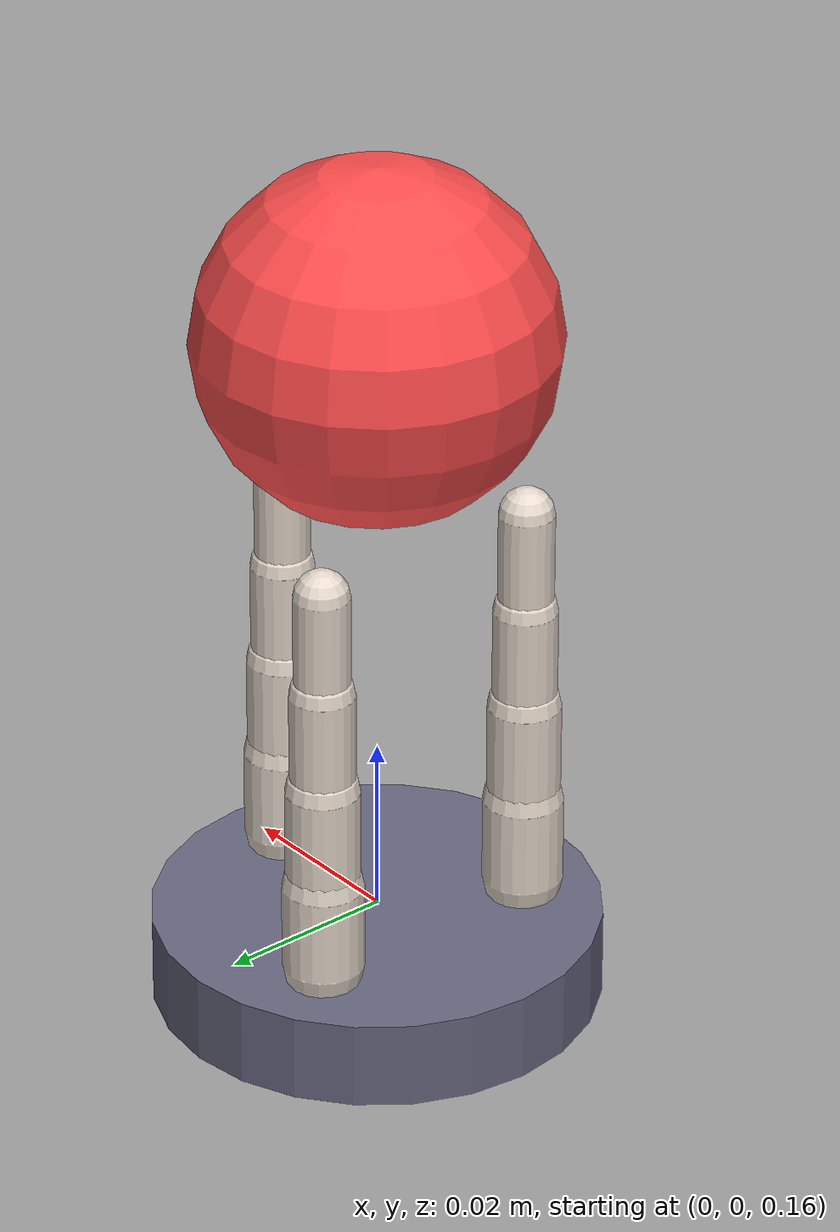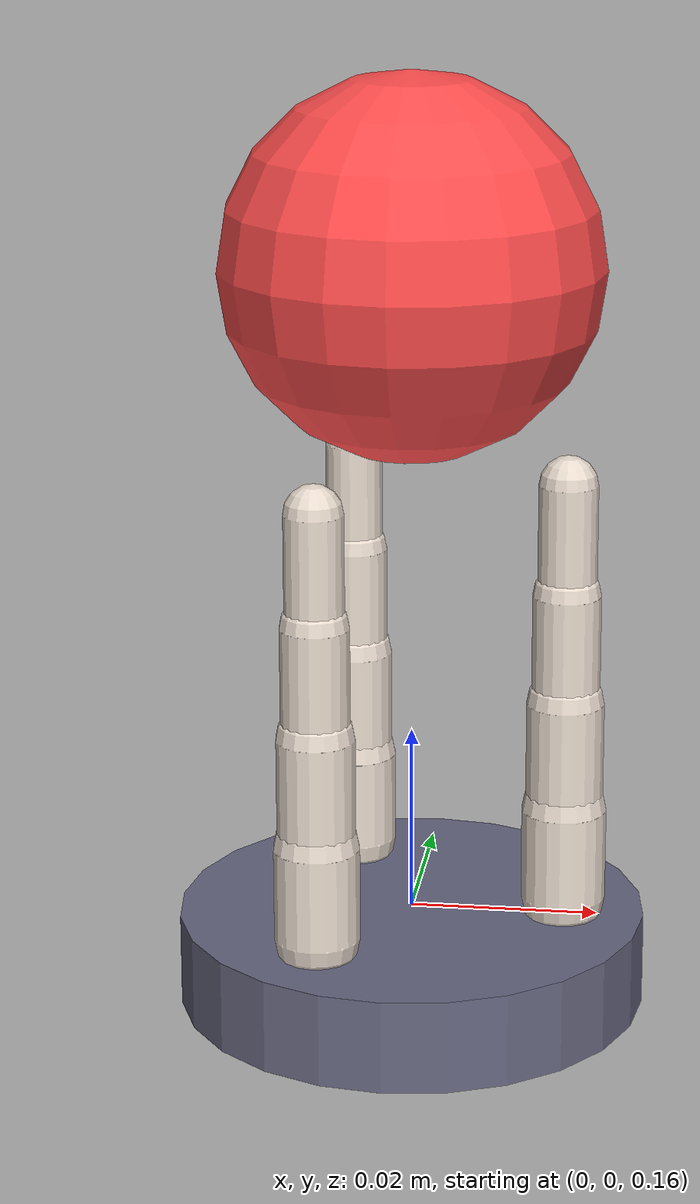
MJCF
<?xml version="1.0" encoding="utf-8"?>
<mujoco model="test_gripper">

    <!-- Physics-correct soft gripper: tendon routing, stiffness gradient, no segment overlap.
         Flex/soft hints: small timestep, Newton solver, joint stiffness/damping for compliance. -->
    <compiler angle="radian" autolimits="true" meshdir="meshes"/>

    <option timestep="0.002" iterations="50" solver="Newton" tolerance="1e-10">
        <flag warmstart="enable"/>
    </option>

    <size nconmax="500" njmax="500" nstack="5000000"/>

    <visual>
        <headlight diffuse="0.6 0.6 0.6" ambient="0.3 0.3 0.3" specular="0.1 0.1 0.1"/>
        <rgba haze="0.15 0.25 0.35 1"/>
        <global azimuth="120" elevation="-20"/>
    </visual>

    <default>
        <default class="gripper">
            <geom type="capsule" condim="4" friction="0.8 0.005 0.0001"
                  rgba="0.9 0.85 0.8 1" margin="0.001"/>
            <joint type="hinge" limited="true" range="-1.57 1.57"
                   stiffness="0.02" damping="0.5"
                   armature="0.001"/>
        </default>
        <default class="palm">
            <geom type="cylinder" rgba="0.4 0.4 0.5 1" friction="0.8 0.005 0.0001"/>
        </default>
        <default class="visual">
            <geom contype="0" conaffinity="0" group="1"/>
        </default>
    </default>

    <asset>
        <texture type="skybox" builtin="gradient" rgb1="0.3 0.5 0.7" rgb2="0 0 0" width="512" height="3072"/>
        <texture type="2d" name="groundplane" builtin="checker" mark="edge" rgb1="0.2 0.3 0.4" rgb2="0.1 0.2 0.3"
                 markrgb="0.8 0.8 0.8" width="300" height="300"/>
        <material name="groundplane" texture="groundplane" texuniform="true" texrepeat="5 5" reflectance="0.2"/>
        <material name="finger_mat" rgba="0.9 0.85 0.8 1" specular="0.3" shininess="0.5"/>
        <material name="palm_mat" rgba="0.4 0.4 0.5 1" specular="0.5" shininess="0.8"/>
    </asset>

    <worldbody>

        <geom name="ground" type="plane" size="0.5 0.5 0.1" material="groundplane" condim="3"/>
        <light pos="0 0 1.5" dir="0 0 -1" directional="true"/>

        <body name="palm" pos="0 0 0.15">
            <geom class="palm" name="palm_geom" size="0.0250 0.0050"
                  pos="0 0 0.0050" material="palm_mat"/>

            <body name="finger_0_base" pos="0.0163 0.0000 0.0100">
                <joint class="gripper" name="finger_0_base_joint" axis="0 1 0"
                       stiffness="0.0200"/>
                <site name="finger_0_site_base" pos="0 0 0.002" size="0.002"/>
                <geom class="gripper" name="finger_0_seg_0"
                      fromto="0 0 0.0020 0 0 0.0119"
                      size="0.0045" material="finger_mat"/>

                <body name="finger_0_seg_1" pos="0 0 0.0119">
                    <joint class="gripper" name="finger_0_joint_1" axis="0 1 0"
                           stiffness="0.0170"/>
                    <geom class="gripper" name="finger_0_seg_1_geom"
                          fromto="0 0 0.001 0 0 0.0119"
                          size="0.0041" material="finger_mat"/>
                    <site name="finger_0_site_1" pos="0 0 0.0059" size="0.002"/>

                <body name="finger_0_seg_2" pos="0 0 0.0119">
                    <joint class="gripper" name="finger_0_joint_2" axis="0 1 0"
                           stiffness="0.0140"/>
                    <geom class="gripper" name="finger_0_seg_2_geom"
                          fromto="0 0 0.001 0 0 0.0119"
                          size="0.0036" material="finger_mat"/>
                    <site name="finger_0_site_2" pos="0 0 0.0059" size="0.002"/>

                <body name="finger_0_seg_3" pos="0 0 0.0119">
                    <joint class="gripper" name="finger_0_joint_3" axis="0 1 0"
                           stiffness="0.0110"/>
                    <geom class="gripper" name="finger_0_seg_3_geom"
                          fromto="0 0 0.001 0 0 0.0119"
                          size="0.0031" material="finger_mat"/>
                    <site name="finger_0_site_3" pos="0 0 0.0059" size="0.002"/>
                </body>
                </body>
                </body>
            </body>

            <body name="finger_1_base" pos="-0.0081 0.0141 0.0100">
                <joint class="gripper" name="finger_1_base_joint" axis="0 1 0"
                       stiffness="0.0200"/>
                <site name="finger_1_site_base" pos="0 0 0.002" size="0.002"/>
                <geom class="gripper" name="finger_1_seg_0"
                      fromto="0 0 0.0020 0 0 0.0119"
                      size="0.0045" material="finger_mat"/>

                <body name="finger_1_seg_1" pos="0 0 0.0119">
                    <joint class="gripper" name="finger_1_joint_1" axis="0 1 0"
                           stiffness="0.0170"/>
                    <geom class="gripper" name="finger_1_seg_1_geom"
                          fromto="0 0 0.001 0 0 0.0119"
                          size="0.0041" material="finger_mat"/>
                    <site name="finger_1_site_1" pos="0 0 0.0059" size="0.002"/>

                <body name="finger_1_seg_2" pos="0 0 0.0119">
                    <joint class="gripper" name="finger_1_joint_2" axis="0 1 0"
                           stiffness="0.0140"/>
                    <geom class="gripper" name="finger_1_seg_2_geom"
                          fromto="0 0 0.001 0 0 0.0119"
                          size="0.0036" material="finger_mat"/>
                    <site name="finger_1_site_2" pos="0 0 0.0059" size="0.002"/>

                <body name="finger_1_seg_3" pos="0 0 0.0119">
                    <joint class="gripper" name="finger_1_joint_3" axis="0 1 0"
                           stiffness="0.0110"/>
                    <geom class="gripper" name="finger_1_seg_3_geom"
                          fromto="0 0 0.001 0 0 0.0119"
                          size="0.0031" material="finger_mat"/>
                    <site name="finger_1_site_3" pos="0 0 0.0059" size="0.002"/>
                </body>
                </body>
                </body>
            </body>

            <body name="finger_2_base" pos="-0.0081 -0.0141 0.0100">
                <joint class="gripper" name="finger_2_base_joint" axis="0 1 0"
                       stiffness="0.0200"/>
                <site name="finger_2_site_base" pos="0 0 0.002" size="0.002"/>
                <geom class="gripper" name="finger_2_seg_0"
                      fromto="0 0 0.0020 0 0 0.0119"
                      size="0.0045" material="finger_mat"/>

                <body name="finger_2_seg_1" pos="0 0 0.0119">
                    <joint class="gripper" name="finger_2_joint_1" axis="0 1 0"
                           stiffness="0.0170"/>
                    <geom class="gripper" name="finger_2_seg_1_geom"
                          fromto="0 0 0.001 0 0 0.0119"
                          size="0.0041" material="finger_mat"/>
                    <site name="finger_2_site_1" pos="0 0 0.0059" size="0.002"/>

                <body name="finger_2_seg_2" pos="0 0 0.0119">
                    <joint class="gripper" name="finger_2_joint_2" axis="0 1 0"
                           stiffness="0.0140"/>
                    <geom class="gripper" name="finger_2_seg_2_geom"
                          fromto="0 0 0.001 0 0 0.0119"
                          size="0.0036" material="finger_mat"/>
                    <site name="finger_2_site_2" pos="0 0 0.0059" size="0.002"/>

                <body name="finger_2_seg_3" pos="0 0 0.0119">
                    <joint class="gripper" name="finger_2_joint_3" axis="0 1 0"
                           stiffness="0.0110"/>
                    <geom class="gripper" name="finger_2_seg_3_geom"
                          fromto="0 0 0.001 0 0 0.0119"
                          size="0.0031" material="finger_mat"/>
                    <site name="finger_2_site_3" pos="0 0 0.0059" size="0.002"/>
                </body>
                </body>
                </body>
            </body>
        </body>

        <body name="test_object" pos="0 0 0.22999999999999998">
            <freejoint name="object_free"/>
            <geom name="object_geom" type="sphere" size="0.02" mass="0.05"
                  rgba="1 0.3 0.3 1" friction="0.8 0.005 0.0001"/>
        </body>
    </worldbody>

    <tendon>
        <spatial name="finger_0_flexor" limited="true" range="0 0.1" width="0.002" rgba="0.8 0.2 0.2 1">
            <site site="finger_0_site_base"/>
            <site site="finger_0_site_1"/>
            <site site="finger_0_site_2"/>
            <site site="finger_0_site_3"/>
        </spatial>
        <spatial name="finger_0_extensor" limited="true" range="0 0.1" width="0.002" rgba="0.2 0.6 0.8 1">
            <site site="finger_0_site_3"/>
            <site site="finger_0_site_2"/>
            <site site="finger_0_site_1"/>
            <site site="finger_0_site_base"/>
        </spatial>
        <spatial name="finger_1_flexor" limited="true" range="0 0.1" width="0.002" rgba="0.8 0.2 0.2 1">
            <site site="finger_1_site_base"/>
            <site site="finger_1_site_1"/>
            <site site="finger_1_site_2"/>
            <site site="finger_1_site_3"/>
        </spatial>
        <spatial name="finger_1_extensor" limited="true" range="0 0.1" width="0.002" rgba="0.2 0.6 0.8 1">
            <site site="finger_1_site_3"/>
            <site site="finger_1_site_2"/>
            <site site="finger_1_site_1"/>
            <site site="finger_1_site_base"/>
        </spatial>
        <spatial name="finger_2_flexor" limited="true" range="0 0.1" width="0.002" rgba="0.8 0.2 0.2 1">
            <site site="finger_2_site_base"/>
            <site site="finger_2_site_1"/>
            <site site="finger_2_site_2"/>
            <site site="finger_2_site_3"/>
        </spatial>
        <spatial name="finger_2_extensor" limited="true" range="0 0.1" width="0.002" rgba="0.2 0.6 0.8 1">
            <site site="finger_2_site_3"/>
            <site site="finger_2_site_2"/>
            <site site="finger_2_site_1"/>
            <site site="finger_2_site_base"/>
        </spatial>
    </tendon>

    <actuator>
        <motor name="finger_0_flexor_motor" tendon="finger_0_flexor"
               gear="30" ctrllimited="true" ctrlrange="0 1"/>
        <motor name="finger_0_extensor_motor" tendon="finger_0_extensor"
               gear="30" ctrllimited="true" ctrlrange="0 1"/>
        <motor name="finger_1_flexor_motor" tendon="finger_1_flexor"
               gear="30" ctrllimited="true" ctrlrange="0 1"/>
        <motor name="finger_1_extensor_motor" tendon="finger_1_extensor"
               gear="30" ctrllimited="true" ctrlrange="0 1"/>
        <motor name="finger_2_flexor_motor" tendon="finger_2_flexor"
               gear="30" ctrllimited="true" ctrlrange="0 1"/>
        <motor name="finger_2_extensor_motor" tendon="finger_2_extensor"
               gear="30" ctrllimited="true" ctrlrange="0 1"/>
    </actuator>

    <sensor>
        <jointpos name="finger_0_pos" joint="finger_0_base_joint"/>
        <jointvel name="finger_0_vel" joint="finger_0_base_joint"/>
        <jointpos name="finger_1_pos" joint="finger_1_base_joint"/>
        <jointvel name="finger_1_vel" joint="finger_1_base_joint"/>
        <jointpos name="finger_2_pos" joint="finger_2_base_joint"/>
        <jointvel name="finger_2_vel" joint="finger_2_base_joint"/>
    </sensor>

</mujoco>
